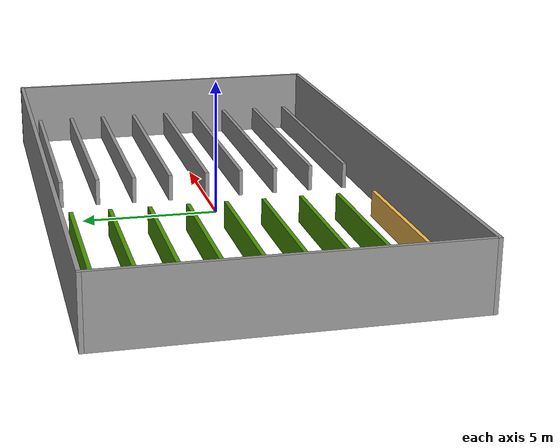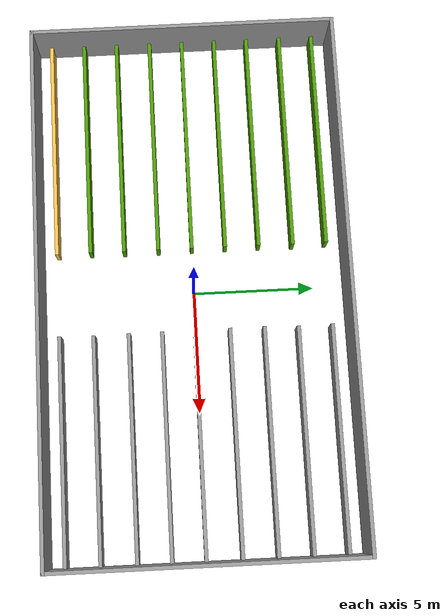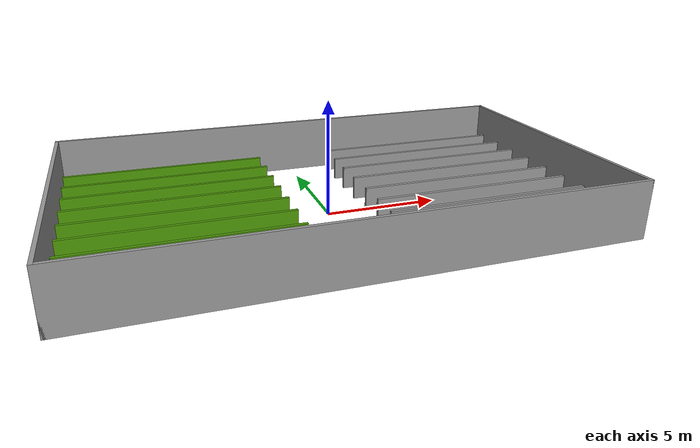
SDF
<?xml version='1.0'?>
<sdf version='1.7'>
  <model name='rowfollowing'>
    <pose>0.011818 0.022289 0 0 -0 0</pose>
    <link name='Wall_0'>
      <collision name='Wall_0_Collision'>
        <geometry>
          <box>
            <size>9.25 0.15 1</size>
          </box>
        </geometry>
        <pose>0 0 0.5 0 -0 0</pose>
      </collision>
      <visual name='Wall_0_Visual'>
        <pose>0 0 0.5 0 -0 0</pose>
        <geometry>
          <box>
            <size>9.25 0.15 1</size>
          </box>
        </geometry>
        <material>
          <script>
            <uri>file://media/materials/scripts/gazebo.material</uri>
            <name>Gazebo/Grey</name>
          </script>
          <ambient>0.305882 0.603922 0.0235294 1</ambient>
        </material>
        <meta>
          <layer>0</layer>
        </meta>
      </visual>
      <pose>-6.37582 5.57771 0 0 -0 3.14159</pose>
    </link>
    <link name='Wall_10'>
      <collision name='Wall_10_Collision'>
        <geometry>
          <box>
            <size>9.25 0.15 1</size>
          </box>
        </geometry>
        <pose>0 0 0.5 0 -0 0</pose>
      </collision>
      <visual name='Wall_10_Visual'>
        <pose>0 0 0.5 0 -0 0</pose>
        <geometry>
          <box>
            <size>9.25 0.15 1</size>
          </box>
        </geometry>
        <material>
          <script>
            <uri>file://media/materials/scripts/gazebo.material</uri>
            <name>Gazebo/Grey</name>
          </script>
          <ambient>0.305882 0.603922 0.0235294 1</ambient>
        </material>
        <meta>
          <layer>0</layer>
        </meta>
      </visual>
      <pose>-6.37582 -1.42229 0 0 -0 0</pose>
    </link>
    <link name='Wall_12'>
      <collision name='Wall_12_Collision'>
        <geometry>
          <box>
            <size>9.25 0.15 1</size>
          </box>
        </geometry>
        <pose>0 0 0.5 0 -0 0</pose>
      </collision>
      <visual name='Wall_12_Visual'>
        <pose>0 0 0.5 0 -0 0</pose>
        <geometry>
          <box>
            <size>9.25 0.15 1</size>
          </box>
        </geometry>
        <material>
          <script>
            <uri>file://media/materials/scripts/gazebo.material</uri>
            <name>Gazebo/Grey</name>
          </script>
          <ambient>0.305882 0.603922 0.0235294 1</ambient>
        </material>
        <meta>
          <layer>0</layer>
        </meta>
      </visual>
      <pose>-6.37582 -2.84221 0 0 -0 3.14159</pose>
    </link>
    <link name='Wall_14'>
      <collision name='Wall_14_Collision'>
        <geometry>
          <box>
            <size>9.25 0.15 1</size>
          </box>
        </geometry>
        <pose>0 0 0.5 0 -0 0</pose>
      </collision>
      <visual name='Wall_14_Visual'>
        <pose>0 0 0.5 0 -0 0</pose>
        <geometry>
          <box>
            <size>9.25 0.15 1</size>
          </box>
        </geometry>
        <material>
          <script>
            <uri>file://media/materials/scripts/gazebo.material</uri>
            <name>Gazebo/Grey</name>
          </script>
          <ambient>0.305882 0.603922 0.0235294 1</ambient>
        </material>
        <meta>
          <layer>0</layer>
        </meta>
      </visual>
      <pose>-6.39882 -4.23629 0 0 -0 0</pose>
    </link>
    <link name='Wall_16'>
      <collision name='Wall_16_Collision'>
        <geometry>
          <box>
            <size>9.25 0.15 1</size>
          </box>
        </geometry>
        <pose>0 0 0.5 0 -0 0</pose>
      </collision>
      <visual name='Wall_16_Visual'>
        <pose>0 0 0.5 0 -0 0</pose>
        <geometry>
          <box>
            <size>9.25 0.15 1</size>
          </box>
        </geometry>
        <material>
          <script>
            <uri>file://media/materials/scripts/gazebo.material</uri>
            <name>Gazebo/Grey</name>
          </script>
          <ambient>1 0.764706 0.305882 1</ambient>
        </material>
        <meta>
          <layer>0</layer>
        </meta>
      </visual>
      <pose>-6.37582 -5.63029 0 0 -0 3.14159</pose>
    </link>
    <link name='Wall_18'>
      <collision name='Wall_18_Collision'>
        <geometry>
          <box>
            <size>9.25 0.15 1</size>
          </box>
        </geometry>
        <pose>0 0 0.5 0 -0 0</pose>
      </collision>
      <visual name='Wall_18_Visual'>
        <pose>0 0 0.5 0 -0 0</pose>
        <geometry>
          <box>
            <size>9.25 0.15 1</size>
          </box>
        </geometry>
        <material>
          <script>
            <uri>file://media/materials/scripts/gazebo.material</uri>
            <name>Gazebo/Grey</name>
          </script>
          <ambient>1 1 1 1</ambient>
        </material>
        <meta>
          <layer>0</layer>
        </meta>
      </visual>
      <pose>6.32918 5.59071 0 0 -0 0</pose>
    </link>
    <link name='Wall_2'>
      <collision name='Wall_2_Collision'>
        <geometry>
          <box>
            <size>9.25 0.15 1</size>
          </box>
        </geometry>
        <pose>0 0 0.5 0 -0 0</pose>
      </collision>
      <visual name='Wall_2_Visual'>
        <pose>0 0 0.5 0 -0 0</pose>
        <geometry>
          <box>
            <size>9.25 0.15 1</size>
          </box>
        </geometry>
        <material>
          <script>
            <uri>file://media/materials/scripts/gazebo.material</uri>
            <name>Gazebo/Grey</name>
          </script>
          <ambient>0.305882 0.603922 0.0235294 1</ambient>
        </material>
        <meta>
          <layer>0</layer>
        </meta>
      </visual>
      <pose>-6.35282 4.18271 0 0 -0 0</pose>
    </link>
    <link name='Wall_20'>
      <collision name='Wall_20_Collision'>
        <geometry>
          <box>
            <size>9.25 0.15 1</size>
          </box>
        </geometry>
        <pose>0 0 0.5 0 -0 0</pose>
      </collision>
      <visual name='Wall_20_Visual'>
        <pose>0 0 0.5 0 -0 0</pose>
        <geometry>
          <box>
            <size>9.25 0.15 1</size>
          </box>
        </geometry>
        <material>
          <script>
            <uri>file://media/materials/scripts/gazebo.material</uri>
            <name>Gazebo/Grey</name>
          </script>
          <ambient>1 1 1 1</ambient>
        </material>
        <meta>
          <layer>0</layer>
        </meta>
      </visual>
      <pose>6.35218 4.19571 0 0 -0 3.14159</pose>
    </link>
    <link name='Wall_22'>
      <collision name='Wall_22_Collision'>
        <geometry>
          <box>
            <size>9.25 0.15 1</size>
          </box>
        </geometry>
        <pose>0 0 0.5 0 -0 0</pose>
      </collision>
      <visual name='Wall_22_Visual'>
        <pose>0 0 0.5 0 -0 0</pose>
        <geometry>
          <box>
            <size>9.25 0.15 1</size>
          </box>
        </geometry>
        <material>
          <script>
            <uri>file://media/materials/scripts/gazebo.material</uri>
            <name>Gazebo/Grey</name>
          </script>
          <ambient>1 1 1 1</ambient>
        </material>
        <meta>
          <layer>0</layer>
        </meta>
      </visual>
      <pose>6.30618 2.79971 0 0 -0 0</pose>
    </link>
    <link name='Wall_24'>
      <collision name='Wall_24_Collision'>
        <geometry>
          <box>
            <size>9.25 0.15 1</size>
          </box>
        </geometry>
        <pose>0 0 0.5 0 -0 0</pose>
      </collision>
      <visual name='Wall_24_Visual'>
        <pose>0 0 0.5 0 -0 0</pose>
        <geometry>
          <box>
            <size>9.25 0.15 1</size>
          </box>
        </geometry>
        <material>
          <script>
            <uri>file://media/materials/scripts/gazebo.material</uri>
            <name>Gazebo/Grey</name>
          </script>
          <ambient>1 1 1 1</ambient>
        </material>
        <meta>
          <layer>0</layer>
        </meta>
      </visual>
      <pose>6.30618 1.38271 0 0 -0 3.14159</pose>
    </link>
    <link name='Wall_26'>
      <collision name='Wall_26_Collision'>
        <geometry>
          <box>
            <size>9.25 0.15 1</size>
          </box>
        </geometry>
        <pose>0 0 0.5 0 -0 0</pose>
      </collision>
      <visual name='Wall_26_Visual'>
        <pose>0 0 0.5 0 -0 0</pose>
        <geometry>
          <box>
            <size>9.25 0.15 1</size>
          </box>
        </geometry>
        <material>
          <script>
            <uri>file://media/materials/scripts/gazebo.material</uri>
            <name>Gazebo/Grey</name>
          </script>
          <ambient>1 1 1 1</ambient>
        </material>
        <meta>
          <layer>0</layer>
        </meta>
      </visual>
      <pose>6.32918 -0.059289 0 0 -0 0</pose>
    </link>
    <link name='Wall_28'>
      <collision name='Wall_28_Collision'>
        <geometry>
          <box>
            <size>9.25 0.15 1</size>
          </box>
        </geometry>
        <pose>0 0 0.5 0 -0 0</pose>
      </collision>
      <visual name='Wall_28_Visual'>
        <pose>0 0 0.5 0 -0 0</pose>
        <geometry>
          <box>
            <size>9.25 0.15 1</size>
          </box>
        </geometry>
        <material>
          <script>
            <uri>file://media/materials/scripts/gazebo.material</uri>
            <name>Gazebo/Grey</name>
          </script>
          <ambient>1 1 1 1</ambient>
        </material>
        <meta>
          <layer>0</layer>
        </meta>
      </visual>
      <pose>6.32918 -1.40929 0 0 -0 3.14159</pose>
    </link>
    <link name='Wall_34'>
      <collision name='Wall_34_Collision'>
        <geometry>
          <box>
            <size>9.25 0.15 1</size>
          </box>
        </geometry>
        <pose>0 0 0.5 0 -0 0</pose>
      </collision>
      <visual name='Wall_34_Visual'>
        <pose>0 0 0.5 0 -0 0</pose>
        <geometry>
          <box>
            <size>9.25 0.15 1</size>
          </box>
        </geometry>
        <material>
          <script>
            <uri>file://media/materials/scripts/gazebo.material</uri>
            <name>Gazebo/Grey</name>
          </script>
          <ambient>1 1 1 1</ambient>
        </material>
        <meta>
          <layer>0</layer>
        </meta>
      </visual>
      <pose>6.32918 -5.61729 0 0 -0 0</pose>
    </link>
    <link name='Wall_36'>
      <collision name='Wall_36_Collision'>
        <geometry>
          <box>
            <size>9.25 0.15 1</size>
          </box>
        </geometry>
        <pose>0 0 0.5 0 -0 0</pose>
      </collision>
      <visual name='Wall_36_Visual'>
        <pose>0 0 0.5 0 -0 0</pose>
        <geometry>
          <box>
            <size>9.25 0.15 1</size>
          </box>
        </geometry>
        <material>
          <script>
            <uri>file://media/materials/scripts/gazebo.material</uri>
            <name>Gazebo/Grey</name>
          </script>
          <ambient>1 1 1 1</ambient>
        </material>
        <meta>
          <layer>0</layer>
        </meta>
      </visual>
      <pose>6.32918 -2.77929 0 0 -0 0</pose>
    </link>
    <link name='Wall_38'>
      <collision name='Wall_38_Collision'>
        <geometry>
          <box>
            <size>9.25 0.15 1</size>
          </box>
        </geometry>
        <pose>0 0 0.5 0 -0 0</pose>
      </collision>
      <visual name='Wall_38_Visual'>
        <pose>0 0 0.5 0 -0 0</pose>
        <geometry>
          <box>
            <size>9.25 0.15 1</size>
          </box>
        </geometry>
        <material>
          <script>
            <uri>file://media/materials/scripts/gazebo.material</uri>
            <name>Gazebo/Grey</name>
          </script>
          <ambient>1 1 1 1</ambient>
        </material>
        <meta>
          <layer>0</layer>
        </meta>
      </visual>
      <pose>6.35218 -4.22029 0 0 -0 0</pose>
    </link>
    <link name='Wall_4'>
      <collision name='Wall_4_Collision'>
        <geometry>
          <box>
            <size>9.25 0.15 1</size>
          </box>
        </geometry>
        <pose>0 0 0.5 0 -0 0</pose>
      </collision>
      <visual name='Wall_4_Visual'>
        <pose>0 0 0.5 0 -0 0</pose>
        <geometry>
          <box>
            <size>9.25 0.15 1</size>
          </box>
        </geometry>
        <material>
          <script>
            <uri>file://media/materials/scripts/gazebo.material</uri>
            <name>Gazebo/Grey</name>
          </script>
          <ambient>0.305882 0.603922 0.0235294 1</ambient>
        </material>
        <meta>
          <layer>0</layer>
        </meta>
      </visual>
      <pose>-6.37582 2.76371 0 0 -0 3.14159</pose>
    </link>
    <link name='Wall_40'>
      <collision name='Wall_40_Collision'>
        <geometry>
          <box>
            <size>12.75 0.15 2.5</size>
          </box>
        </geometry>
        <pose>0 0 1.25 0 -0 0</pose>
      </collision>
      <visual name='Wall_40_Visual'>
        <pose>0 0 1.25 0 -0 0</pose>
        <geometry>
          <box>
            <size>12.75 0.15 2.5</size>
          </box>
        </geometry>
        <material>
          <script>
            <uri>file://media/materials/scripts/gazebo.material</uri>
            <name>Gazebo/Grey</name>
          </script>
          <ambient>1 1 1 1</ambient>
        </material>
        <meta>
          <layer>0</layer>
        </meta>
      </visual>
      <pose>-11.005 -0 0 0 -0 -1.5708</pose>
    </link>
    <link name='Wall_41'>
      <collision name='Wall_41_Collision'>
        <geometry>
          <box>
            <size>22.1601 0.15 2.5</size>
          </box>
        </geometry>
        <pose>0 0 1.25 0 -0 0</pose>
      </collision>
      <visual name='Wall_41_Visual'>
        <pose>0 0 1.25 0 -0 0</pose>
        <geometry>
          <box>
            <size>22.1601 0.15 2.5</size>
          </box>
        </geometry>
        <material>
          <script>
            <uri>file://media/materials/scripts/gazebo.material</uri>
            <name>Gazebo/Grey</name>
          </script>
          <ambient>1 1 1 1</ambient>
        </material>
        <meta>
          <layer>0</layer>
        </meta>
      </visual>
      <pose>0 -6.3 0 0 -0 0</pose>
    </link>
    <link name='Wall_42'>
      <collision name='Wall_42_Collision'>
        <geometry>
          <box>
            <size>12.75 0.15 2.5</size>
          </box>
        </geometry>
        <pose>0 0 1.25 0 -0 0</pose>
      </collision>
      <visual name='Wall_42_Visual'>
        <pose>0 0 1.25 0 -0 0</pose>
        <geometry>
          <box>
            <size>12.75 0.15 2.5</size>
          </box>
        </geometry>
        <material>
          <script>
            <uri>file://media/materials/scripts/gazebo.material</uri>
            <name>Gazebo/Grey</name>
          </script>
          <ambient>1 1 1 1</ambient>
        </material>
        <meta>
          <layer>0</layer>
        </meta>
      </visual>
      <pose>11.005 -0 0 0 -0 1.5708</pose>
    </link>
    <link name='Wall_43'>
      <collision name='Wall_43_Collision'>
        <geometry>
          <box>
            <size>22.1601 0.15 2.5</size>
          </box>
        </geometry>
        <pose>0 0 1.25 0 -0 0</pose>
      </collision>
      <visual name='Wall_43_Visual'>
        <pose>0 0 1.25 0 -0 0</pose>
        <geometry>
          <box>
            <size>22.1601 0.15 2.5</size>
          </box>
        </geometry>
        <material>
          <script>
            <uri>file://media/materials/scripts/gazebo.material</uri>
            <name>Gazebo/Grey</name>
          </script>
          <ambient>1 1 1 1</ambient>
        </material>
        <meta>
          <layer>0</layer>
        </meta>
      </visual>
      <pose>0 6.3 0 0 -0 3.14159</pose>
    </link>
    <link name='Wall_6'>
      <collision name='Wall_6_Collision'>
        <geometry>
          <box>
            <size>9.25 0.15 1</size>
          </box>
        </geometry>
        <pose>0 0 0.5 0 -0 0</pose>
      </collision>
      <visual name='Wall_6_Visual'>
        <pose>0 0 0.5 0 -0 0</pose>
        <geometry>
          <box>
            <size>9.25 0.15 1</size>
          </box>
        </geometry>
        <material>
          <script>
            <uri>file://media/materials/scripts/gazebo.material</uri>
            <name>Gazebo/Grey</name>
          </script>
          <ambient>0.305882 0.603922 0.0235294 1</ambient>
        </material>
        <meta>
          <layer>0</layer>
        </meta>
      </visual>
      <pose>-6.37582 1.36771 0 0 -0 0</pose>
    </link>
    <link name='Wall_8'>
      <collision name='Wall_8_Collision'>
        <geometry>
          <box>
            <size>9.25 0.15 1</size>
          </box>
        </geometry>
        <pose>0 0 0.5 0 -0 0</pose>
      </collision>
      <visual name='Wall_8_Visual'>
        <pose>0 0 0.5 0 -0 0</pose>
        <geometry>
          <box>
            <size>9.25 0.15 1</size>
          </box>
        </geometry>
        <material>
          <script>
            <uri>file://media/materials/scripts/gazebo.material</uri>
            <name>Gazebo/Grey</name>
          </script>
          <ambient>0.305882 0.603922 0.0235294 1</ambient>
        </material>
        <meta>
          <layer>0</layer>
        </meta>
      </visual>
      <pose>-6.37582 -0.026289 0 0 -0 3.14159</pose>
    </link>
    <static>1</static>
  </model>
</sdf>
